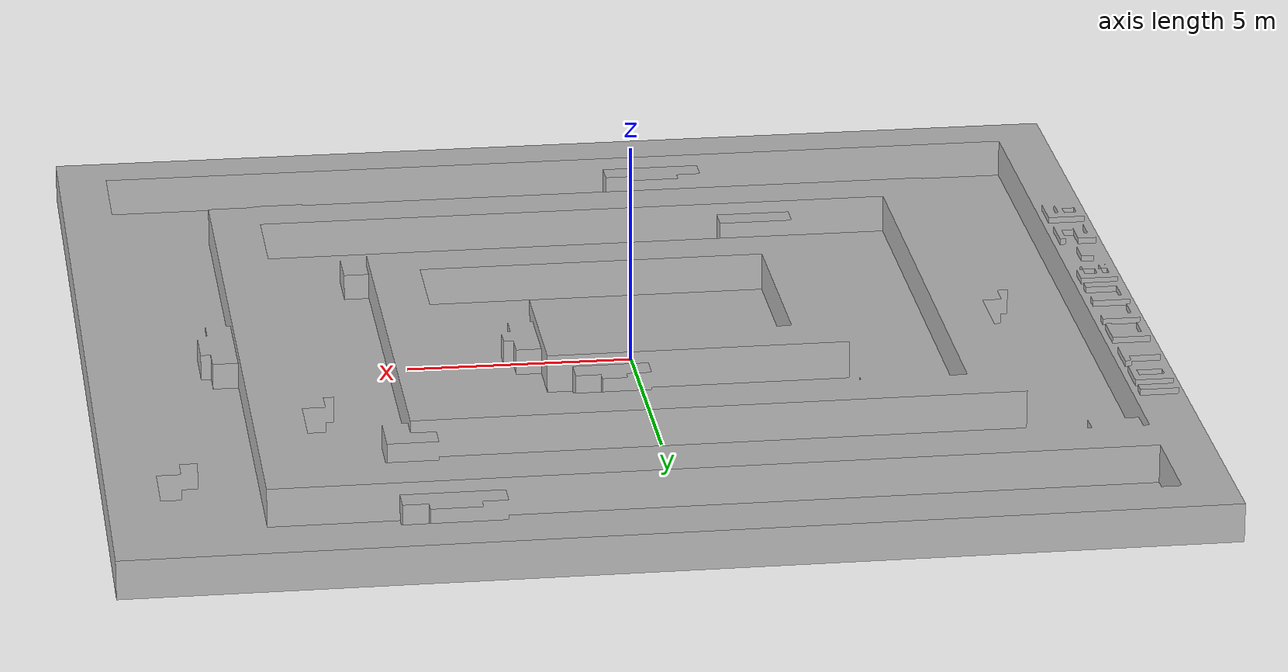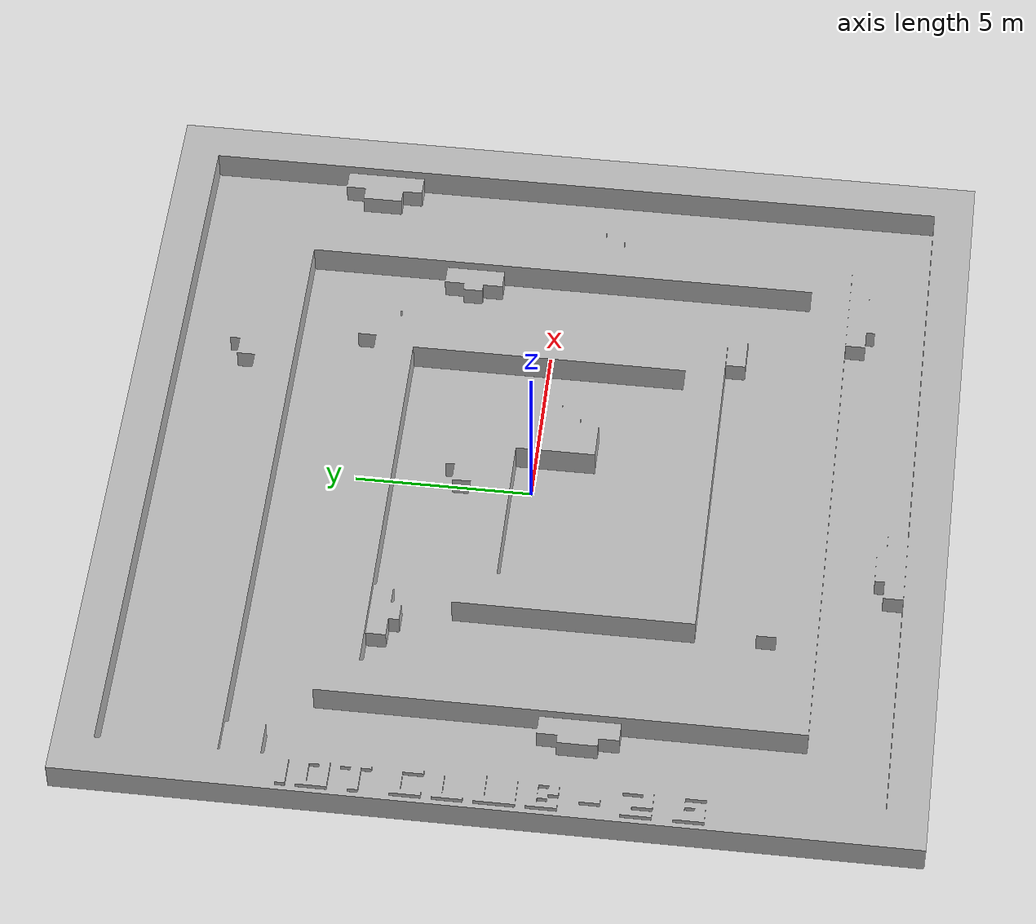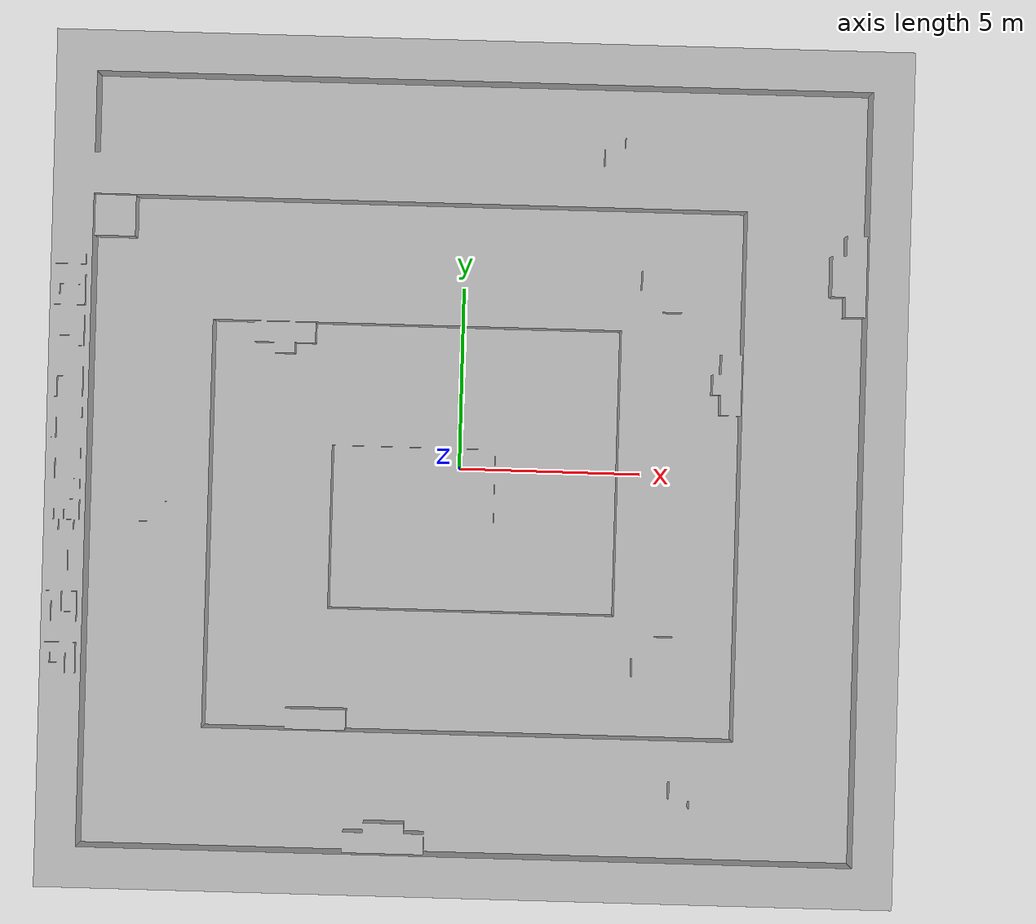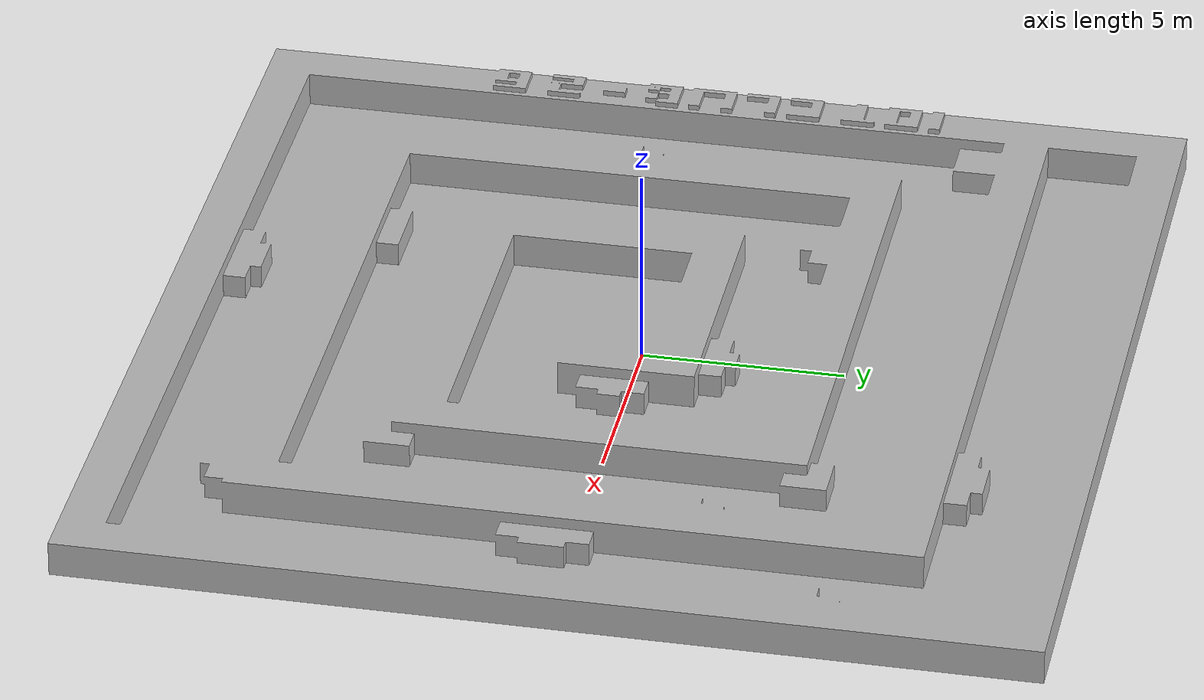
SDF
<?xml version="1.0"?>

<sdf version='1.10'>

  <world name='maze'>

    <physics type="ode">
      <max_step_size>0.001</max_step_size>
      <real_time_update_rate>1000</real_time_update_rate>
      <real_time_factor>1</real_time_factor>
    </physics>

    <plugin
      filename="gz-sim-physics-system"
      name="gz::sim::systems::Physics">
    </plugin>
    <plugin
      filename="gz-sim-user-commands-system"
      name="gz::sim::systems::UserCommands">
    </plugin>
    <plugin
      filename="gz-sim-scene-broadcaster-system"
      name="gz::sim::systems::SceneBroadcaster">
    </plugin>
    <plugin
      filename="gz-sim-contact-system"
      name="gz::sim::systems::Contact">
    </plugin>
    <plugin
      filename="gz-sim-sensors-system"
      name="gz::sim::systems::Sensors">
      <render_engine>ogre2</render_engine>
    </plugin>

    <light name='point_1' type='directional'>
      <cast_shadows>true</cast_shadows>
      <visualize>true</visualize>
      <intensity>2.5</intensity>
      <pose>0 0 2 0 0 0</pose>
      <diffuse>1 1 1 1</diffuse>
      <specular>0.5 0.5 0.5 1</specular>
      <attenuation>
        <range>1000</range>
        <constant>0.9</constant>
        <linear>0.5</linear>
        <quadratic>0.02</quadratic>
      </attenuation>
      <direction>-0.5 0.5 -1.0</direction>
    </light>

    <scene>
      <ambient>1 1 1 1</ambient>
      <background>1 1 1 1</background>
      <shadows>1</shadows>
      <sky>
        <sunset>20</sunset>
      </sky>
    </scene>

    <gui fullscreen='0'>
      <camera name='user_camera'>
        <pose>0 0 6 0 0 0</pose>
        <view_controller>orbit</view_controller>
      </camera>
    </gui>

    <model name='maze'>
      <pose>0 0 0 1.57 0 0</pose>
      <static>true</static>
      <link name='link'>
        <collision name='collision'>
          <geometry>
            <mesh>
              <uri>file://models/new_iot.obj</uri>
              <scale>1 1 1</scale>
            </mesh>
          </geometry>
        </collision>
        <visual name='visual'>
          <geometry>
            <mesh>
              <uri>file://models/new_iot.obj</uri>
              <scale>1 1 1</scale>
            </mesh>
          </geometry>
        </visual>
      </link>
    </model>

  </world>
</sdf>
